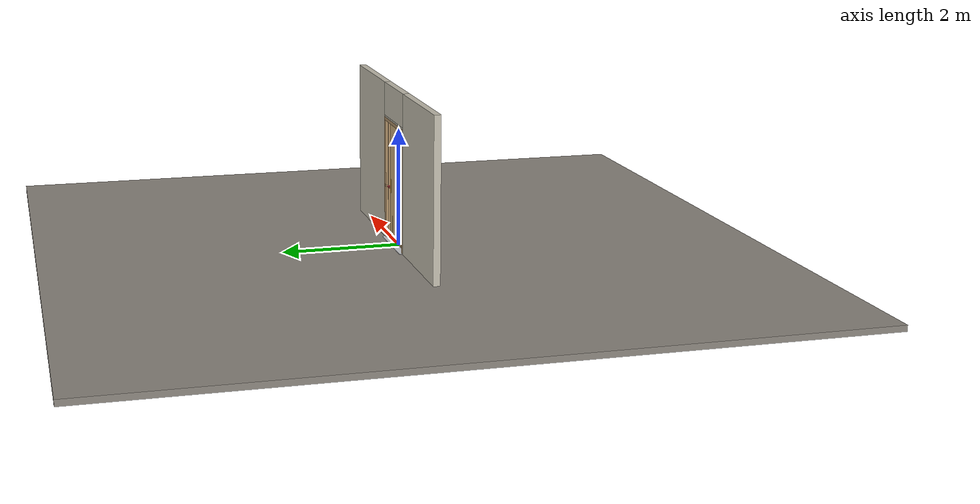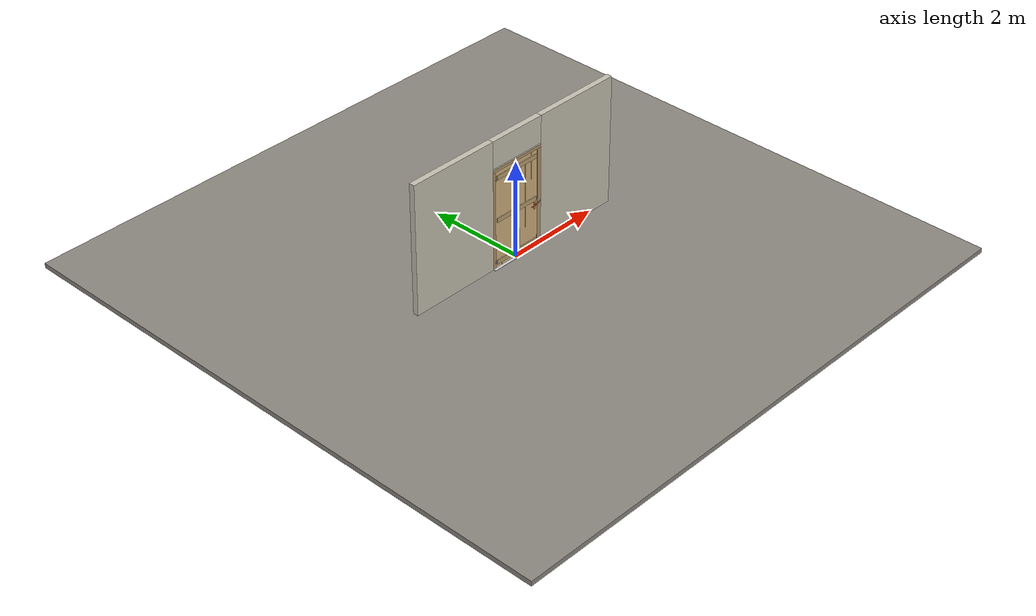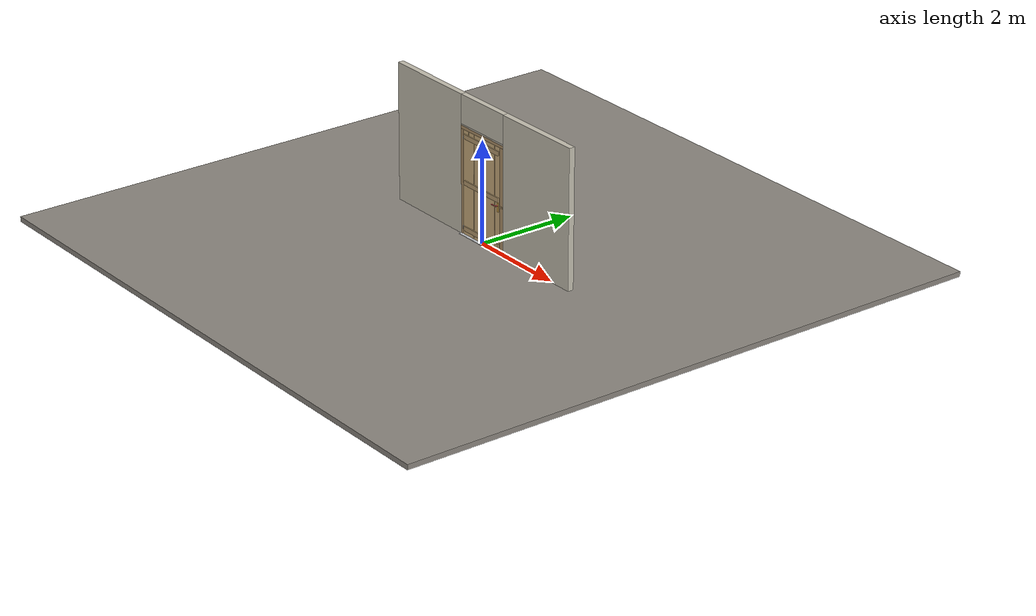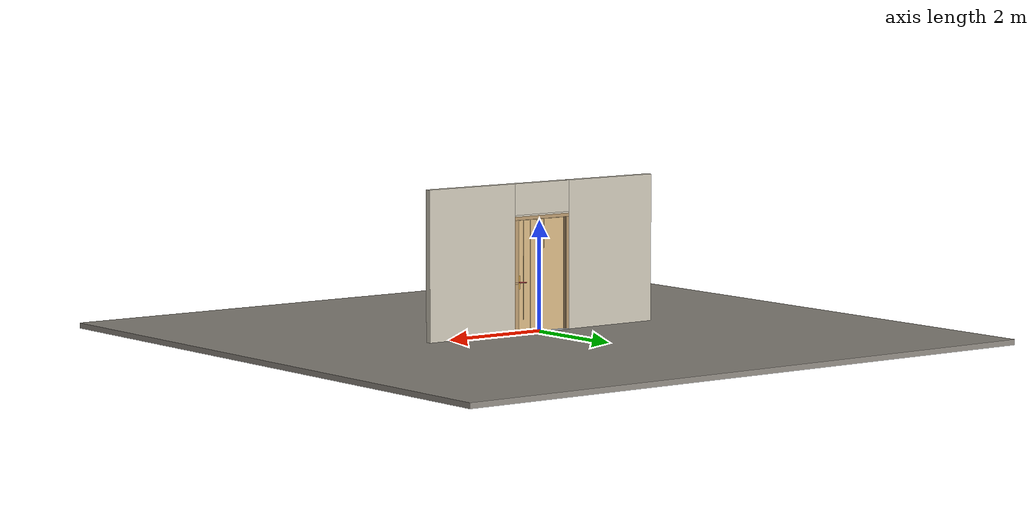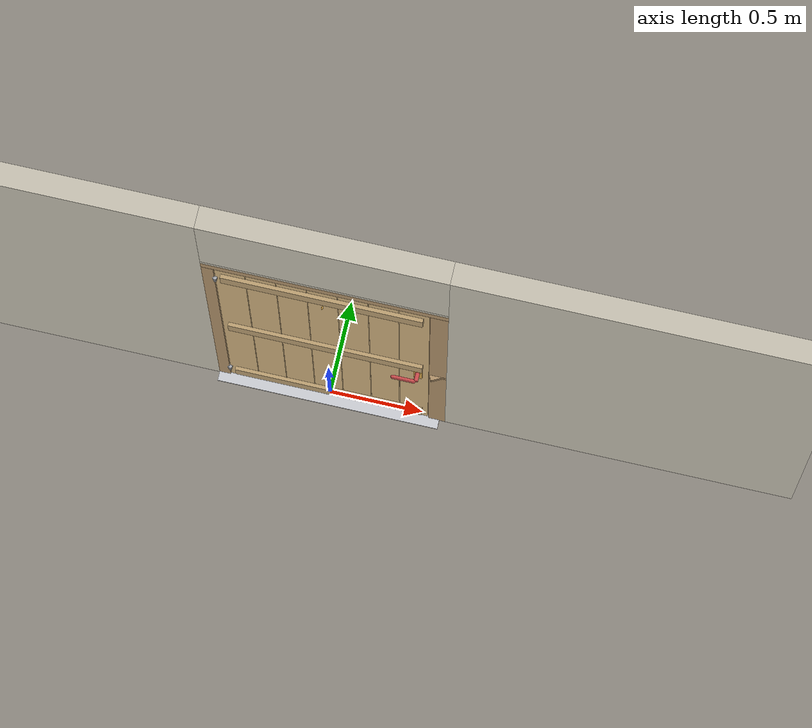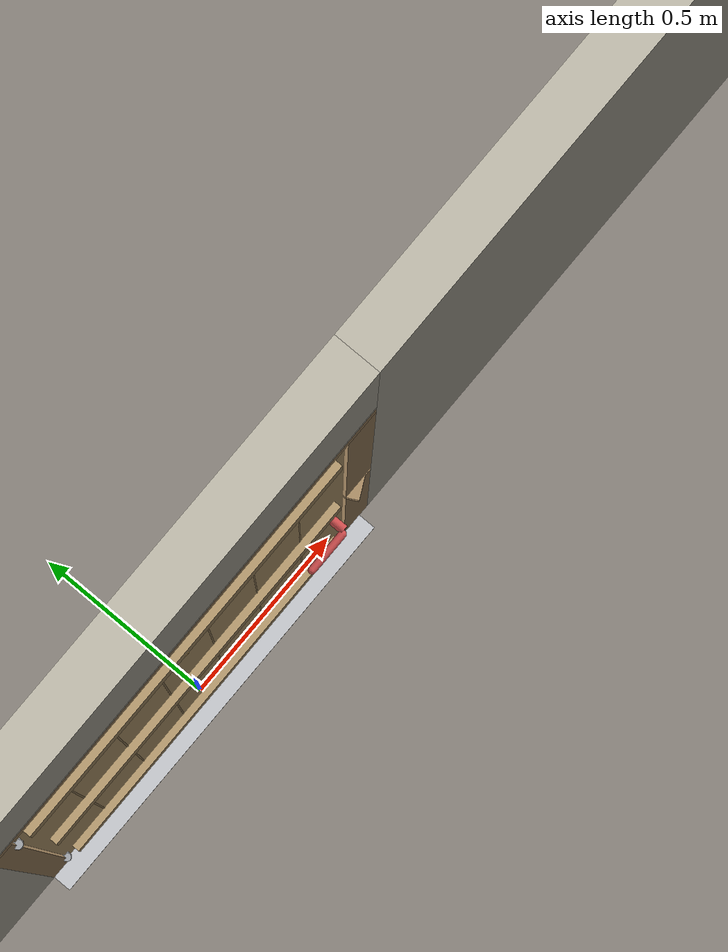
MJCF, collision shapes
<?xml version="1.0" ?>
<mujoco model="db0254_swing_single_full">
  <compiler angle="radian" meshdir="../../hardware" texturedir="../../textures" autolimits="true" inertiafromgeom="false"/>
  <option timestep="0.002" integrator="implicitfast" cone="elliptic" impratio="10" noslip_iterations="3">
    <flag multiccd="enable"/>
  </option>
  <size memory="16M"/>
  <default>
    <geom condim="4" solref="0.005 1" solimp="0.95 0.99 0.001"/>
    <joint solreflimit="0.005 1" solimplimit="0.95 0.99 0.001"/>
    <tendon solreflimit="0.005 1"/>
    <equality solref="0.002 1"/>
  </default>
  <visual>
    <headlight ambient="0.4 0.4 0.4" diffuse="0.7 0.7 0.7" specular="0.2 0.2 0.2"/>
    <quality shadowsize="4096"/>
    <map znear="0.01" zfar="60"/>
  </visual>
  <asset>
    <mesh name="lever_6fbb1e9593" file="lever_6fbb1e9593.obj"/>
    <mesh name="strap_hinge_118b895b75" file="strap_hinge_118b895b75.obj"/>
    <mesh name="wreath_86a3f1bf8b" file="wreath_86a3f1bf8b.obj"/>
    <material name="mat_floor" rgba="0.55 0.53 0.5 1" specular="0.2" shininess="0.15" reflectance="0"/>
    <material name="mat_wall" rgba="0.78 0.76 0.7 1" specular="0.2" shininess="0.1" reflectance="0"/>
    <material name="mat_leaf" rgba="0.82 0.7 0.5 1" specular="0.2" shininess="0.45" reflectance="0"/>
    <material name="mat_leaf_brace" rgba="0.738 0.63 0.45 1" specular="0.2" shininess="0.2" reflectance="0"/>
    <material name="mat_hinge" rgba="0.65 0.66 0.68 1" specular="0.74" shininess="0.5" reflectance="0.36"/>
    <material name="mat_op_brass" rgba="0.85 0.66 0.3 1" specular="0.8" shininess="0.75" reflectance="0.4"/>
    <material name="mat_trim" rgba="0.85 0.66 0.3 1" specular="0.8" shininess="0.75" reflectance="0.4"/>
    <material name="mat_bolt" rgba="0.75 0.76 0.77 1" specular="0.8" shininess="0.65" reflectance="0.4"/>
    <material name="mat_frame" rgba="0.7 0.58 0.42 1" specular="0.2" shininess="0.5" reflectance="0"/>
    <material name="mat_threshold" rgba="0.8 0.81 0.83 1" specular="0.8" shininess="0.6" reflectance="0.4"/>
    <material name="mat_wreath" rgba="0.12 0.3 0.12 1" specular="0.2" shininess="0.05" reflectance="0"/>
    <material name="mat_wreath_hook" rgba="0.85 0.66 0.3 1" specular="0.8" shininess="0.75" reflectance="0.4"/>
    <texture name="skybox" type="skybox" builtin="gradient" rgb1="0.6 0.7 0.85" rgb2="0.9 0.92 0.95" width="256" height="256"/>
  </asset>
  <worldbody>
    <light name="sun" pos="1.5 -2.5 4" dir="-0.3 0.5 -0.8" directional="true" diffuse="0.8 0.8 0.8" specular="0.3 0.3 0.3" castshadow="true"/>
    <light name="fill" pos="-1.5 2.5 3" dir="0.3 -0.5 -0.7" directional="true" diffuse="0.35 0.35 0.4" castshadow="false"/>
    <camera name="robot_view" pos="0 -2.509187 1.734312" xyaxes="1 0 0 0 0.26963 0.962964" fovy="52"/>
    <camera name="far_view" pos="0 2.575187 1.734312" xyaxes="-1 0 0 0 -0.26963 0.962964" fovy="52"/>
    <camera name="iso" pos="1.932062 -2.102438 2.141063" xyaxes="0.741536 0.670913 0 -0.242917 0.268487 0.932151" fovy="46"/>
    <camera name="detail_handle" pos="0.554 -0.8725 1.194" xyaxes="0.97561 0.219512 0 -0.070934 0.315262 0.94635" fovy="38"/>
    <geom name="floor" type="box" size="6 6 0.05" pos="0 0 -0.05" material="mat_floor" group="0" contype="1" conaffinity="1" friction="0.8 0.005 0.0001" density="2400"/>
    <geom name="wall_left" type="box" size="0.9515 0.0575 1.35" pos="-1.5485 0.033 1.35" material="mat_wall" group="0" contype="1" conaffinity="1" friction="0.6 0.005 0.0001" density="800"/>
    <geom name="wall_right" type="box" size="0.9365 0.0575 1.35" pos="1.5635 0.033 1.35" material="mat_wall" group="0" contype="1" conaffinity="1" friction="0.6 0.005 0.0001" density="800"/>
    <geom name="wall_header" type="box" size="0.612 0.0575 0.2825" pos="0.015 0.033 2.4175" material="mat_wall" group="0" contype="1" conaffinity="1" friction="0.6 0.005 0.0001" density="800"/>
    <geom name="hinge_pintle_0" type="cylinder" size="0.008 0.02" pos="-0.534 -0.0245 0.133" material="mat_hinge" group="1" contype="0" conaffinity="0" density="7850"/>
    <geom name="hinge_pintle_1" type="cylinder" size="0.008 0.02" pos="-0.534 -0.0245 1.865" material="mat_hinge" group="1" contype="0" conaffinity="0" density="7850"/>
    <geom name="jamb_hinge" type="box" size="0.03 0.0575 1.0225" pos="-0.567 0.033 1.0225" material="mat_frame" group="0" contype="1" conaffinity="1" friction="0.6 0.005 0.0001" density="750"/>
    <geom name="strike_914_wall_n" type="box" size="0.045 0.042 0.015" pos="0.582 0.0485 0.914" material="mat_frame" group="0" contype="1" conaffinity="1" friction="0.6 0.005 0.0001" density="750"/>
    <geom name="strike_914_wall_p" type="box" size="0.045 0.008 0.015" pos="0.582 -0.0145 0.914" material="mat_frame" group="0" contype="1" conaffinity="1" friction="0.6 0.005 0.0001" density="750"/>
    <geom name="strike_914_ramp" type="box" size="0.045 0.016771 0.015" pos="0.584749 -0.017375 0.914" quat="0.973249 0 0 0.229753" material="mat_frame" group="0" contype="1" conaffinity="1" friction="0.12 0.005 0.0001" density="750"/>
    <geom name="strike_914_back" type="box" size="0.036 0.0065 0.015" pos="0.591 0 0.914" material="mat_frame" group="0" contype="1" conaffinity="1" friction="0.6 0.005 0.0001" density="750"/>
    <geom name="jamb_strike_0" type="box" size="0.045 0.0575 0.4495" pos="0.582 0.033 0.4495" material="mat_frame" group="0" contype="1" conaffinity="1" friction="0.6 0.005 0.0001" density="750"/>
    <geom name="jamb_strike_1" type="box" size="0.045 0.0575 0.558" pos="0.582 0.033 1.487" material="mat_frame" group="0" contype="1" conaffinity="1" friction="0.6 0.005 0.0001" density="750"/>
    <geom name="jamb_head" type="box" size="0.612 0.0575 0.03" pos="0.015 0.033 2.075" material="mat_frame" group="0" contype="1" conaffinity="1" friction="0.6 0.005 0.0001" density="750"/>
    <geom name="head_stud" type="box" size="0.612 0.0575 0.015" pos="0.015 0.033 2.12" material="mat_wall" group="0" contype="1" conaffinity="1" friction="0.6 0.005 0.0001" density="500"/>
    <geom name="stop_hinge" type="box" size="0.0055 0.016 1.0225" pos="-0.5315 0.034 1.0225" material="mat_frame" group="0" contype="1" conaffinity="1" friction="0.6 0.005 0.0001" density="750"/>
    <geom name="stop_strike" type="box" size="0.0055 0.016 1.0225" pos="0.5315 0.034 1.0225" material="mat_frame" group="0" contype="1" conaffinity="1" friction="0.6 0.005 0.0001" density="750"/>
    <geom name="stop_head" type="box" size="0.537 0.016 0.0055" pos="0 0.034 2.0395" material="mat_frame" group="0" contype="1" conaffinity="1" friction="0.6 0.005 0.0001" density="750"/>
    <geom name="threshold" type="box" size="0.597 0.1075 0.004" pos="0 0.033 0.004" material="mat_threshold" group="0" contype="1" conaffinity="1" friction="0.6 0.005 0.0001" density="2700"/>
    <geom name="hinge_pintle_0_strap_0" type="box" size="0.0064 0.01775 0.016" pos="-0.534 0.00075 0.133" material="mat_hinge" group="1" contype="0" conaffinity="0" density="7850"/>
    <geom name="hinge_pintle_1_strap_0" type="box" size="0.0064 0.01775 0.016" pos="-0.534 0.00075 1.865" material="mat_hinge" group="1" contype="0" conaffinity="0" density="7850"/>
    <site name="approach_point" pos="0 -1.5 0" quat="1 0 0 0" size="0.05" rgba="0.2 0.9 0.2 0.5" group="4"/>
    <site name="goal_point" pos="0 1.5 0" quat="1 0 0 0" size="0.05" rgba="0.2 0.9 0.2 0.5" group="4"/>
    <site name="door_plane_center" pos="0 0 1.0225" quat="1 0 0 0" size="0.02" rgba="0.2 0.9 0.2 0.5" group="4"/>
    <body name="leaf" pos="-0.537 0 0">
      <inertial pos="0.503268 -0.005386 1.047508" mass="36.89816" quat="0.497916 0.502814 -0.499001 0.500255" diaginertia="3.436605978 14.550635307 17.964404598"/>
      <joint name="leaf_hinge" type="hinge" axis="0 0 -1" pos="0.003 -0.0245 0" limited="true" range="0 1.396263" damping="0.525663" frictionloss="5.677158" armature="0.02"/>
      <geom name="leaf_slab" type="box" size="0.5335 0.0175 1.016" pos="0.5365 0 1.025" material="mat_leaf" group="0" contype="1" conaffinity="1" friction="0.35 0.005 0.0001" density="1"/>
      <geom name="leaf_plank_gap_1" type="box" size="0.002 0.0185 1.006" pos="0.155429 0 1.025" material="mat_leaf_brace" group="1" contype="0" conaffinity="0" density="1"/>
      <geom name="leaf_plank_gap_2" type="box" size="0.002 0.0185 1.006" pos="0.307857 0 1.025" material="mat_leaf_brace" group="1" contype="0" conaffinity="0" density="1"/>
      <geom name="leaf_plank_gap_3" type="box" size="0.002 0.0185 1.006" pos="0.460286 0 1.025" material="mat_leaf_brace" group="1" contype="0" conaffinity="0" density="1"/>
      <geom name="leaf_plank_gap_4" type="box" size="0.002 0.0185 1.006" pos="0.612714 0 1.025" material="mat_leaf_brace" group="1" contype="0" conaffinity="0" density="1"/>
      <geom name="leaf_plank_gap_5" type="box" size="0.002 0.0185 1.006" pos="0.765143 0 1.025" material="mat_leaf_brace" group="1" contype="0" conaffinity="0" density="1"/>
      <geom name="leaf_plank_gap_6" type="box" size="0.002 0.0185 1.006" pos="0.917571 0 1.025" material="mat_leaf_brace" group="1" contype="0" conaffinity="0" density="1"/>
      <geom name="leaf_batten_12" type="box" size="0.5035 0.01 0.045" pos="0.5365 -0.0275 0.129" material="mat_leaf_brace" group="1" contype="0" conaffinity="0" density="1"/>
      <geom name="leaf_batten_192" type="box" size="0.5035 0.01 0.045" pos="0.5365 -0.0275 1.921" material="mat_leaf_brace" group="1" contype="0" conaffinity="0" density="1"/>
      <geom name="leaf_batten_102" type="box" size="0.5035 0.01 0.045" pos="0.5365 -0.0275 1.025" material="mat_leaf_brace" group="1" contype="0" conaffinity="0" density="1"/>
      <geom name="hinge_strap_0" type="mesh" mesh="strap_hinge_118b895b75" pos="0.003 -0.0205 0.159" material="mat_hinge" group="1" contype="0" conaffinity="0" density="7850"/>
      <geom name="hinge_strap_eye_0" type="cylinder" size="0.011 0.012" pos="0.003 -0.0245 0.159" material="mat_hinge" group="1" contype="0" conaffinity="0" density="7850"/>
      <geom name="hinge_strap_neck_0" type="box" size="0.012 0.006 0.006" pos="0.003 -0.0225 0.159" material="mat_hinge" group="1" contype="0" conaffinity="0" density="7850"/>
      <geom name="hinge_strap_1" type="mesh" mesh="strap_hinge_118b895b75" pos="0.003 -0.0205 1.891" material="mat_hinge" group="1" contype="0" conaffinity="0" density="7850"/>
      <geom name="hinge_strap_eye_1" type="cylinder" size="0.011 0.012" pos="0.003 -0.0245 1.891" material="mat_hinge" group="1" contype="0" conaffinity="0" density="7850"/>
      <geom name="hinge_strap_neck_1" type="box" size="0.012 0.006 0.006" pos="0.003 -0.0225 1.891" material="mat_hinge" group="1" contype="0" conaffinity="0" density="7850"/>
      <geom name="leaf_handle_escutcheon_n" type="box" size="0.0225 0.0015 0.12" pos="1.015 -0.019 0.914" material="mat_op_brass" group="1" contype="0" conaffinity="0" density="3000"/>
      <geom name="leaf_handle_escutcheon_p" type="box" size="0.0225 0.0015 0.12" pos="1.015 0.019 0.914" material="mat_op_brass" group="1" contype="0" conaffinity="0" density="3000"/>
      <geom name="leaf_latch_bolt_faceplate" type="box" size="0.0006 0.011 0.025" pos="1.0694 0 0.914" material="mat_bolt" group="1" contype="0" conaffinity="0" density="8500"/>
      <geom name="wreath" type="mesh" mesh="wreath_86a3f1bf8b" pos="0.5365 -0.0175 1.59396" quat="0.707107 0.707107 0 0" material="mat_wreath" group="2" contype="0" conaffinity="0" density="200"/>
      <geom name="wreath_hook" type="cylinder" size="0.004 0.008" pos="0.5365 -0.0245 1.78196" quat="0.707107 -0.707107 0 0" material="mat_wreath_hook" group="2" contype="0" conaffinity="0" density="8500"/>
      <site name="leaf_edge_mid" pos="1.07 0 1.016" quat="1 0 0 0" size="0.02" rgba="0.2 0.9 0.2 0.5" group="4"/>
      <body name="leaf_handle" pos="1.015 0 0.914">
        <inertial pos="-0.040408 0 0" mass="0.828708" quat="0 0.707107 0.707107 0" diaginertia="0.001675757 0.003345416 0.004975176"/>
        <joint name="leaf_handle_hinge" type="hinge" axis="0 -1 0" limited="true" range="0 0.7" damping="0.270114" frictionloss="0.064" stiffness="1.4" springref="-0.428571" armature="0.01"/>
        <geom name="leaf_handle_spindle" type="cylinder" size="0.006 0.0295" pos="0 0 0" quat="0.707107 -0.707107 0 0" material="mat_op_brass" group="1" contype="0" conaffinity="0" density="7850"/>
        <geom name="leaf_handle_lever_n" type="mesh" mesh="lever_6fbb1e9593" pos="0 -0.0175 0" quat="0.707107 0.707107 0 0" material="mat_op_brass" group="1" contype="0" conaffinity="0" density="3000"/>
        <geom name="leaf_handle_lever_col_n" type="capsule" size="0.01 0.055" pos="-0.065 -0.0725 0" quat="0.707107 0 -0.707107 0" material="mat_op_brass" group="3" contype="1" conaffinity="1" rgba="0.8 0.3 0.3 0.25" friction="0.7 0.01 0.0001" density="3000"/>
        <geom name="leaf_handle_hub_col_n" type="cylinder" size="0.012 0.022" pos="0 -0.0475 0" quat="0.707107 -0.707107 0 0" material="mat_op_brass" group="3" contype="1" conaffinity="1" rgba="0.8 0.3 0.3 0.25" friction="0.6 0.005 0.0001" density="3000"/>
        <geom name="leaf_handle_lever_p" type="mesh" mesh="lever_6fbb1e9593" pos="0 0.0175 0" quat="-0.707107 0.707107 0 0" material="mat_op_brass" group="1" contype="0" conaffinity="0" density="3000"/>
        <geom name="leaf_handle_lever_col_p" type="capsule" size="0.01 0.055" pos="-0.065 0.0725 0" quat="0.707107 0 -0.707107 0" material="mat_op_brass" group="3" contype="1" conaffinity="1" rgba="0.8 0.3 0.3 0.25" friction="0.7 0.01 0.0001" density="3000"/>
        <geom name="leaf_handle_hub_col_p" type="cylinder" size="0.012 0.022" pos="0 0.0475 0" quat="0.707107 -0.707107 0 0" material="mat_op_brass" group="3" contype="1" conaffinity="1" rgba="0.8 0.3 0.3 0.25" friction="0.6 0.005 0.0001" density="3000"/>
        <site name="leaf_handle_grip_n" pos="-0.104 -0.0725 0" quat="1 0 0 0" size="0.012" rgba="0.2 0.9 0.2 0.5" group="4"/>
        <site name="leaf_handle_grip_p" pos="-0.104 0.0725 0" quat="1 0 0 0" size="0.012" rgba="0.2 0.9 0.2 0.5" group="4"/>
      </body>
      <body name="leaf_latch_bolt" pos="1.07 0 0.914">
        <inertial pos="-0.008 0 0" mass="0.027149" quat="0 0 0.707107 0.707107" diaginertia="0.000000328 0.000003943 0.000003943"/>
        <joint name="leaf_latch_bolt_slide" type="slide" axis="-1 0 0" limited="true" range="0 0.014" damping="2" frictionloss="0.3" stiffness="400" springref="-0.01" armature="0.1"/>
        <geom name="leaf_latch_bolt_capsule" type="capsule" size="0.005 0.017" pos="-0.008 0 0" quat="0.707107 0 0.707107 0" material="mat_bolt" group="0" contype="1" conaffinity="1" friction="0.2 0.005 0.0001" density="8500"/>
      </body>
    </body>
  </worldbody>
  <tendon>
    <fixed name="leaf_latch_bolt_coupling" limited="true" range="0 10">
      <joint joint="leaf_latch_bolt_slide" coef="1"/>
      <joint joint="leaf_handle_hinge" coef="-0.021212"/>
    </fixed>
  </tendon>
  <sensor>
    <jointpos name="leaf_hinge_pos" joint="leaf_hinge"/>
    <jointvel name="leaf_hinge_vel" joint="leaf_hinge"/>
    <jointpos name="leaf_handle_hinge_pos" joint="leaf_handle_hinge"/>
    <jointvel name="leaf_handle_hinge_vel" joint="leaf_handle_hinge"/>
    <jointpos name="leaf_latch_bolt_slide_pos" joint="leaf_latch_bolt_slide"/>
    <jointvel name="leaf_latch_bolt_slide_vel" joint="leaf_latch_bolt_slide"/>
  </sensor>
</mujoco>
